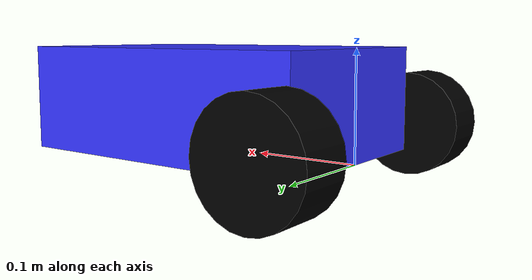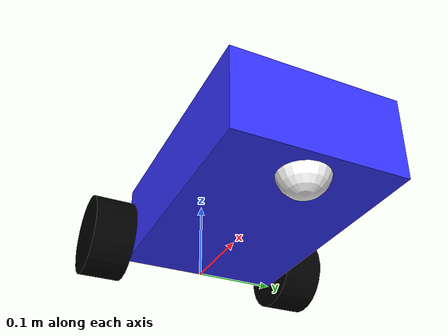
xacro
<?xml version="1.0"?>
<robot xmlns:xacro="http://www.ros.org/wiki/xacro" name="my_robot">

    <xacro:include filename="inertial.xacro" />

    <xacro:property name="chassis_length" value="0.3"/>
    <xacro:property name="chassis_width" value="0.2"/>
    <xacro:property name="chassis_height" value="0.1"/>
    <xacro:property name="chassis_mass" value="1.0"/>
    <xacro:property name="wheel_offset_x" value="0.226"/>
    <xacro:property name="wheel_offset_y" value="0.1485"/>
    <xacro:property name="wheel_offset_z" value="0.01"/>
    <xacro:property name="wheel_mass" value="0.5"/>
    <xacro:property name="caster_wheel_radius" value="0.03"/>
    <xacro:property name="caster_wheel_mass" value="0.05"/>
    <xacro:property name="caster_wheel_offset_x" value="0.26"/>
    <xacro:property name="caster_wheel_offset_z" value="0.006"/>

    <material name="white">
        <color rgba="1 1 1 1" />
    </material>

    <material name="orange">
        <color rgba="1 0.3 0.1 1"/>
    </material>

    <material name="blue">
        <color rgba="0.2 0.2 1 1"/>
    </material>

    <material name="black">
        <color rgba="0 0 0 1"/>
    </material>

    <material name="red">
        <color rgba="1 0 0 1"/>
    </material>

    <link name="chassis">
        <visual>
            <origin xyz="${chassis_length/2} 0 ${chassis_height/2}"/>
            <geometry>
                <box size="${chassis_length} ${chassis_width} ${chassis_height}"/>

            </geometry>
            <material name="blue"/>
        </visual>
        <collision>
            <origin xyz="${chassis_length/2} 0 ${chassis_height/2}"/>
            <geometry>
                <box size="${chassis_length} ${chassis_width} ${chassis_height}"/>
            </geometry>
        </collision>
        <xacro:inertial_box mass="${chassis_mass}" x="${chassis_length}" y="${chassis_width}" z="${chassis_height}">
            <origin xyz="${chassis_length/2} 0 ${chassis_height/2}" rpy="0 0 0"/>
        </xacro:inertial_box>
    </link>

    <link name="base_link"/>

    <joint name="base_link_to_chassis" type="fixed">
        <parent link="base_link"/>
        <child link="chassis"/>
        <origin xyz="0 0 0" rpy="0 0 0"/>
    </joint>

    <link name="wheel_left">
        <visual>
            <origin xyz="0 0 0" rpy="0 0 0"/>
            <geometry>
                <cylinder length="0.05" radius="0.05"/>
            </geometry>
            <material name="black"/>
        </visual>
        <collision>
            <origin xyz="0 0 0" rpy="0 0 0"/>
            <geometry>
                <cylinder length="0.05" radius="0.05"/>
            </geometry>
        </collision>
        <xacro:inertial_cylinder mass="${wheel_mass}" length="0.05" radius="0.05">
            <origin xyz="0 0 0" rpy="0 0 0"/>
        </xacro:inertial_cylinder>
    </link>

    <joint name="chassis_to_wheel_left" type="continuous">
        <parent link="chassis"/>
        <child link="wheel_left"/>
        <origin xyz="0 ${chassis_width/2 + 0.03} ${0.05/2}" rpy="1.57 0 0"/>
        <axis xyz="0 0 1"/>
    </joint>

    <link name="wheel_right">
        <visual>
            <origin xyz="0 0 0" rpy="0 0 0"/>
            <geometry>
                <cylinder length="0.05" radius="0.05"/>
            </geometry>
            <material name="black"/>
        </visual>
        <collision>
            <origin xyz="0 0 0" rpy="0 0 0"/>
            <geometry>
                <cylinder length="0.05" radius="0.05"/>
            </geometry>
        </collision>
        <xacro:inertial_cylinder mass="${wheel_mass}" length="0.05" radius="0.05">
            <origin xyz="0 0 0" rpy="0 0 0"/>
        </xacro:inertial_cylinder>
    </link>

    <joint name="chassis_to_wheel_right" type="continuous">
        <parent link="chassis"/>
        <child link="wheel_right"/>
        <origin xyz="0 -${chassis_width/2 + 0.03} ${0.05/2}" rpy="1.57 0 0"/>
        <axis xyz="0 0 1"/>
    </joint>

    <!-- CASTER WHEEL LINK -->

    <joint name="caster_wheel_joint" type="fixed">
        <parent link="chassis"/>
        <child link="caster_wheel"/>
        <origin xyz="${caster_wheel_offset_x} 0 ${caster_wheel_offset_z}"/>
    </joint>

    <link name="caster_wheel">
        <visual>
            <geometry>
                <sphere radius="${caster_wheel_radius}"/>
            </geometry>
            <material name="white"/>
        </visual>
        <collision>
            <geometry>
                <sphere radius="${caster_wheel_radius}"/>
            </geometry>
        </collision>
        <xacro:inertial_sphere mass="${caster_wheel_mass}" radius="${caster_wheel_radius}">
            <origin xyz="0 0 0" rpy="0 0 0"/>
        </xacro:inertial_sphere>
    </link>

</robot>
